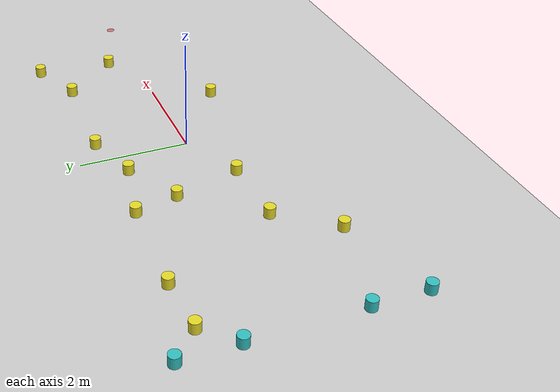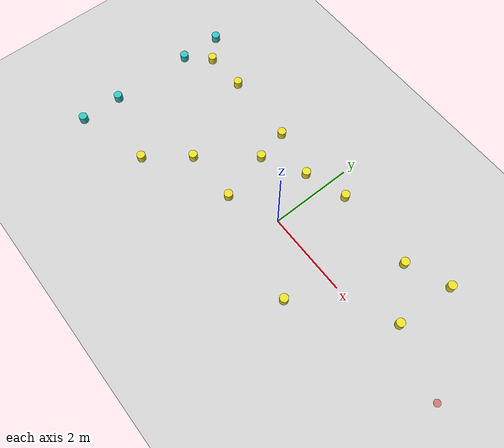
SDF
<sdf version="1.4">
 <world name="default">
  <include><uri>model://sun</uri></include>
  <include><uri>model://ground_plane</uri></include>
  <physics type="ode">
   <real_time_update_rate>1000.0</real_time_update_rate>
   <max_step_size>0.001</max_step_size>
   <real_time_factor>1</real_time_factor>
   <ode>
    <solver>
     <type>quick</type>
     <iters>150</iters>
     <precon_iters>0</precon_iters>
     <sor>1.400000</sor>
     <use_dynamic_moi_rescaling>1</use_dynamic_moi_rescaling>
    </solver>
    <constraints>
     <cfm>0.00001</cfm>
     <erp>0.2</erp>
     <contact_max_correcting_vel>2000.000000</contact_max_correcting_vel>
     <contact_surface_layer>0.01000</contact_surface_layer>
    </constraints>
   </ode>
  </physics>
  <model name="goal"><include><uri>model://goal</uri></include><pose>5 0 0 0 0 0</pose></model>
  <model name="static_cylinder_0">
   <include><uri>model://cylinder_bin</uri></include>
   <pose>-5 2 0 0 0 0</pose>
  </model>
  <model name="static_cylinder_1">
   <include><uri>model://cylinder_bin</uri></include>
   <pose>-5 1 0 0 0 0</pose>
  </model>
  <model name="static_cylinder_2">
   <include><uri>model://cylinder_bin</uri></include>
   <pose>-5 -1 0 0 0 0</pose>
  </model>
  <model name="static_cylinder_3">
   <include><uri>model://cylinder_bin</uri></include>
   <pose>-5 -2 0 0 0 0</pose>
  </model>
  <model name="dynamic_cylinder_0">
   <include><uri>model://cylinder_bin_grey</uri></include>
   <pose>-3.5 1.57 0 0 0 0</pose>
  </model>
  <model name="dynamic_cylinder_1">
   <include><uri>model://cylinder_bin_grey</uri></include>
   <pose>-2.5 -0.53 0 0 0 0</pose>
  </model>
  <model name="dynamic_cylinder_2">
   <include><uri>model://cylinder_bin_grey</uri></include>
   <pose>-1.5 0.72 0 0 0 0</pose>
  </model>
  <model name="dynamic_cylinder_3">
   <include><uri>model://cylinder_bin_grey</uri></include>
   <pose>-0.5 1.26 0 0 0 0</pose>
  </model>
  <model name="dynamic_cylinder_4">
   <include><uri>model://cylinder_bin_grey</uri></include>
   <pose>0.5 1.58 0 0 0 0</pose>
  </model>
  <model name="dynamic_cylinder_5">
   <include><uri>model://cylinder_bin_grey</uri></include>
   <pose>1.5 -1.06 0 0 0 0</pose>
  </model>
  <model name="dynamic_cylinder_6">
   <include><uri>model://cylinder_bin_grey</uri></include>
   <pose>2.5 1.51 0 0 0 0</pose>
  </model>
  <model name="dynamic_cylinder_7">
   <include><uri>model://cylinder_bin_grey</uri></include>
   <pose>3.5 1.92 0 0 0 0</pose>
  </model>
  <model name="dynamic_cylinder_8">
   <include><uri>model://cylinder_bin_grey</uri></include>
   <pose>-3.24 -1.5 0 0 0 0</pose>
  </model>
  <model name="dynamic_cylinder_9">
   <include><uri>model://cylinder_bin_grey</uri></include>
   <pose>-1.17 -0.5 0 0 0 0</pose>
  </model>
  <model name="dynamic_cylinder_10">
   <include><uri>model://cylinder_bin_grey</uri></include>
   <pose>3.40 0.5 0 0 0 0</pose>
  </model>
  <model name="dynamic_cylinder_11">
   <include><uri>model://cylinder_bin_grey</uri></include>
   <pose>-1.69 1.5 0 0 0 0</pose>
  </model>
  <model name="dynamic_cylinder_12">
   <include><uri>model://cylinder_bin_grey</uri></include>
   <pose>-4.5 1.52 0 0 0 0</pose>
  </model>
  <scene><ambient>0.4 0.4 0.4 1</ambient><background>0.7 0.7 0.7 1</background><shadows>false</shadows></scene>
 </world>
</sdf>

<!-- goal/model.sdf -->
<sdf version='1.6'>
  <model name='goal'>
    <pose>0 0 0 0 0 0</pose>
    <link name='goal'>
      <collision name='goal_collision'>
        <pose>0 0 0.0001 0 0 0</pose>
        <geometry>
          <cylinder>
              <radius>0.0001</radius>
              <length>0.0002</length>
            </cylinder>
        </geometry>
      </collision>
      <visual name='goal_visual'>
        <pose>0 0 0.0001 0 0 0</pose>
        <geometry>
          <cylinder>
              <radius>0.08</radius>
              <length>0.0002</length>
            </cylinder>
        </geometry>
        <material>
          <script>
            <uri>file://media/materials/scripts/gazebo.material</uri>
            <name>Gazebo/RedTransparentOverlay</name>
          </script>
          <ambient>1 1 1 1</ambient>
        </material>
        <meta>
          <layer>0</layer>
        </meta>
      </visual>
    </link>
  </model>
</sdf>

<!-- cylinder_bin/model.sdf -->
<sdf version='1.6'>
  <model name='cylinder_bin'>
    <pose>0 0 0 0 0 0</pose>
    <link name='cylinder_bin'>
      <collision name='cylinder_bin_collision'>
        <pose>0 0 0.1 0 0 0</pose>
        <geometry>
          <cylinder>
              <radius>0.08</radius>
              <length>0.2</length>
            </cylinder>
        </geometry>
      </collision>
      <visual name='cylinder_bin_visual'>
        <pose>0 0 0.1 0 0 0</pose>
        <geometry>
          <cylinder>
              <radius>0.1</radius>
              <length>0.2</length>
            </cylinder>
        </geometry>
        <material>
          <script>
            <uri>file://media/materials/scripts/gazebo.material</uri>
            <name>Gazebo/Turquoise</name>
          </script>
          <ambient>1 1 1 1</ambient>
        </material>
        <meta>
          <layer>0</layer>
        </meta>
      </visual>
    </link>
  </model>
</sdf>

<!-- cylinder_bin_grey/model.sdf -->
<sdf version='1.6'>
  <model name='cylinder_bin'>
    <pose>0 0 0 0 0 0</pose>
    <link name='cylinder_bin'>
      <collision name='cylinder_bin_collision'>
        <pose>0 0 0.1 0 0 0</pose>
        <geometry>
          <cylinder>
              <radius>0.08</radius>
              <length>0.2</length>
            </cylinder>
        </geometry>
      </collision>
      <visual name='cylinder_bin_visual'>
        <pose>0 0 0.1 0 0 0</pose>
        <geometry>
          <cylinder>
              <radius>0.1</radius>
              <length>0.2</length>
            </cylinder>
        </geometry>
        <material>
          <script>
            <uri>file://media/materials/scripts/gazebo.material</uri>
            <name>Gazebo/DarkYellow</name>
          </script>
          <ambient>1 1 1 1</ambient>
        </material>
        <meta>
          <layer>0</layer>
        </meta>
      </visual>
    </link>
  </model>
</sdf>
